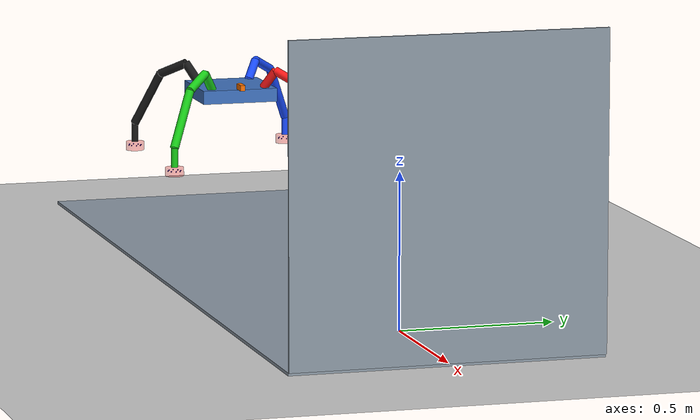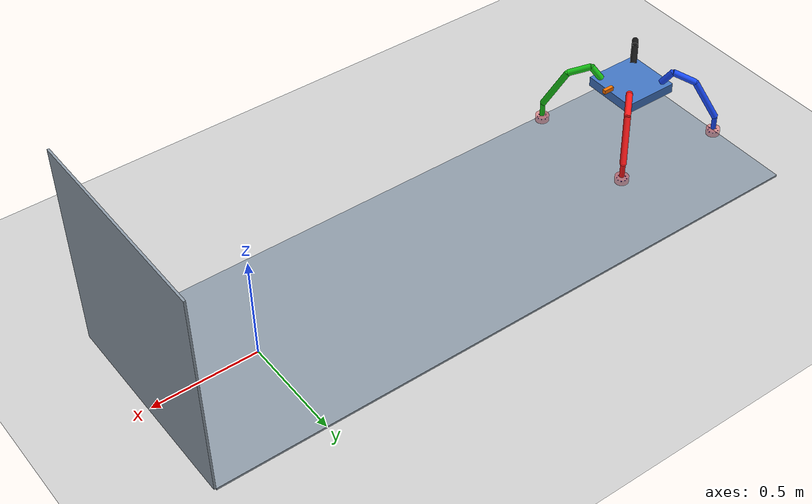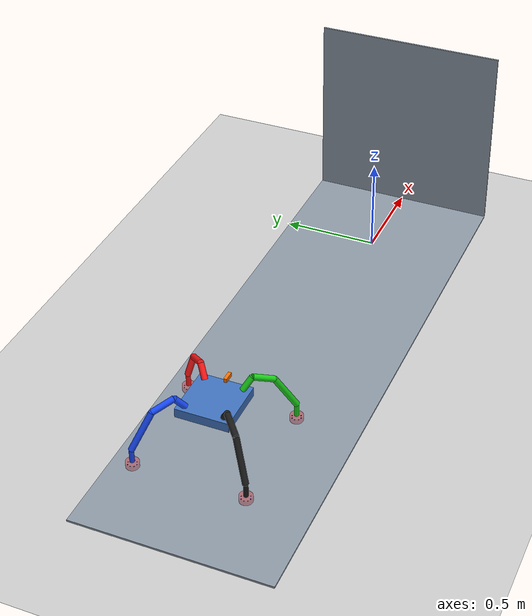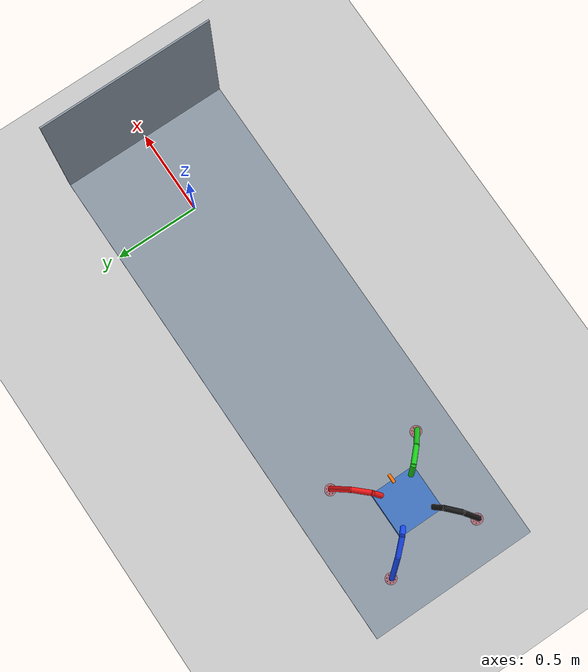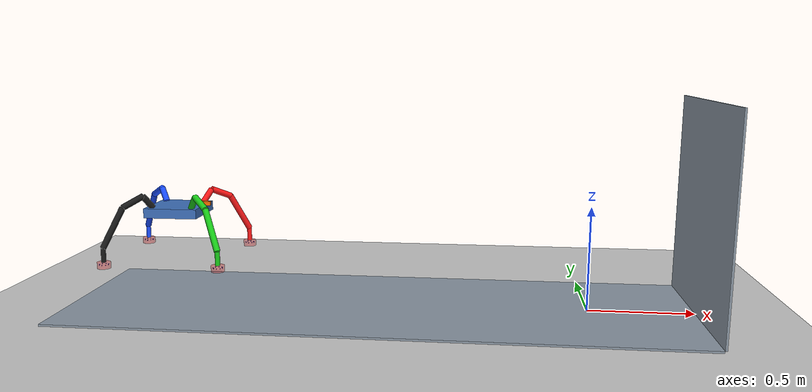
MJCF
<mujoco model="climbing_robot_scene">

  <compiler angle="degree" meshdir="assets" autolimits="true"/>

  <option timestep="0.002" integrator="implicitfast" gravity="0 0 -9.81"/>

  <visual>
    <headlight diffuse="0.8 0.8 0.8" ambient="0.4 0.4 0.4" specular="0.2 0.2 0.2"/>
    <map fogstart="1.5" fogend="4.0" znear="0.01" zfar="10.0"/>
    <rgba haze="0.75 0.85 1.0 1"/>
    <scale jointlength="1.5" jointwidth="0.01"/>
  </visual>

  <asset>
    <texture name="grid" type="2d" builtin="checker" width="512" height="512"
             rgb1="0.9 0.9 0.9" rgb2="0.7 0.7 0.7"/>
    <material name="grid" texture="grid" texrepeat="5 5" reflectance="0.2"/>
    <texture name="skybox" type="skybox" builtin="gradient"
             rgb1="0.6 0.8 1.0" rgb2="1.0 1.0 1.0" width="512" height="3072"/>
    <material name="steel" rgba="0.55 0.60 0.65 1" reflectance="0.4"/>
  </asset>

  <!-- Camera centred on midpoint of extended floor, looking toward wall corner -->
  <statistic center="-1.0 0 0.4" extent="2.5"/>

  <worldbody>
    <site name="world_origin" pos="0 0 0" size="0.05" rgba="1 1 1 0"/>

    <!-- Decorative background plane (no collision) — matches extended floor -->
    <geom name="floor_vis" type="plane" size="2.0 1.5 0.01" material="grid"
          pos="-1.0 0 -0.015" contype="0" conaffinity="0"/>

    <geom name="floor" type="box"
          pos="-1.0 0 -0.005" size="1.5 0.5 0.005"
          condim="6" friction="0.8 0.005 0.0001"
          contype="1" conaffinity="1"
          material="steel"/>

    <!-- Magnetic wall: 1000x1000x10 mm steel plate
         inner face at X=0.500, outer face at X=0.510
         axis-aligned — no euler needed for clean 90-deg floor-wall corner -->
    <geom name="wall" type="box"
          pos="0.505 0 0.5" size="0.005 0.5 0.5"
          condim="6" friction="0.8 0.005 0.0001"
          contype="1" conaffinity="1"
          material="steel"/>

  </worldbody>

  <include file="robot.xml"/>

</mujoco>

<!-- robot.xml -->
<!-- Robot fragment — included by scene.xml -->
<!-- All positions in metres (derived from mm specs); angles in degrees.      -->
<!-- CONNECTION METHOD: body-origin-at-joint + fromto geoms                  -->
<!--   Each body origin  = joint pivot point                                  -->
<!--   Cylinder fromto="0 0 0  dx dy dz" spans joint → next joint in body    -->
<!--   local frame.  Child body pos="dx dy dz" = that same endpoint.         -->
<!-- COORDINATE CONVENTION: +X = FRONT of robot (orange indicator on +X side -->
<!--   confirms front).  +Y = left.  Corner layout:                           -->
<!--     FL (+X, +Y)  |  FR (+X, -Y)                                         -->
<!--     BL (-X, +Y)  |  BR (-X, -Y)                                         -->
<!-- JOINT AXES:                                                               -->
<!--   hip_pitch (all legs): hinge about Z axis (0 0 1), range -90..+90 deg  -->
<!--     → yaw-like swing of leg in the horizontal plane                      -->
<!--   knee / wrist: hinge about leg-diagonal axis in XY plane                -->
<!--   ee: hinge about leg-diagonal axis in YZ plane                          -->
<!-- LEG COLORS (structural cylinder geoms):                                  -->
<!--   FL = RED   (1.0 0.1 0.1 1)                                             -->
<!--   FR = GREEN (0.1 0.8 0.1 1)                                             -->
<!--   BL = BLUE  (0.1 0.3 1.0 1)                                             -->
<!--   BR = BLACK (0.1 0.1 0.1 1)                                             -->
<mujoco>

  <!-- ─── Defaults ─────────────────────────────────────────────────────────── -->
  <default>
    <!-- CF links: carbon fibre density ~1500 kg/m^3 -->
    <default class="cf_link">
      <geom type="cylinder"
            condim="3" friction="1.0 0.005 0.0001"
            solimp="0.9 0.95 0.001" solref="0.02 1"
            contype="1" conaffinity="1"
            density="1500"
            rgba="0.12 0.12 0.14 1"/>
    </default>
    <default class="visual">
      <geom type="mesh" contype="0" conaffinity="0" group="2" rgba="0.2 0.4 0.9 0.4"/>
    </default>
    <default class="collision">
      <geom group="3" rgba="0 0 0 0" condim="6" contype="1" conaffinity="1"/>
    </default>
    <!-- damping 1 Nm.s/rad, armature 0.01 kg.m^2 -->
    <joint damping="1.0" armature="0.01"/>

  </default>

  <!-- ─── Assets ───────────────────────────────────────────────────────────── -->
  <asset>
    <mesh file="1103___pp___aws_pem_215lbs__eml63mm_24.stl"/>
  </asset>

  <!-- ─── Robot Body ───────────────────────────────────────────────────────── -->
  <worldbody>

    <body name="main_frame" pos="-2.0 0 0.45">
      <freejoint name="root"/>
      <geom name="frame_geom" type="box"
            size="0.130 0.130 0.023"
            density="7800"
            contype="0" conaffinity="0"
            rgba="0.25 0.45 0.75 1"/>
      <!-- Front indicator: small orange block on +X face (front), top surface -->
      <geom name="front_indicator" type="box"
            size="0.025 0.008 0.010"
            pos="0.138 0 0.033"
            contype="0" conaffinity="0"
            rgba="1.0 0.45 0.0 1"/>

      <!-- ════════════════════════ BACK-LEFT (BLUE) ══════════════════ -->
      <body name="hip_link_BL" pos="-0.0965 0.092 0.023">
        <joint name="hip_pitch_BL" type="hinge" axis="0 0 1" range="-45 45" />
        <geom name="hip_geom_BL" type="cylinder"
              fromto="0 0 0  -0.03350 0.03350 0.060"
              size="0.015" class="cf_link" rgba="0.1 0.3 1.0 1"/>

        <body name="knee_link_BL" pos="-0.03350 0.03350 0.060">
          <joint name="knee_BL" type="hinge" axis="0.7071068 0.7071068 0" range="-90 90" />
          <geom name="knee_geom_BL" type="cylinder"
                fromto="0 0 0  -0.07280 0.07280 -0.04432"
                size="0.015" class="cf_link" rgba="0.1 0.3 1.0 1"/>

          <body name="wrist_link_BL" pos="-0.07280 0.07280 -0.04432">
            <joint name="wrist_BL" type="hinge" axis="0.7071068 0.7071068 0" range="-90 90" />
            <geom name="wrist_geom_BL" type="cylinder"
                  fromto="0 0 0  -0.07425 0.07425 -0.18187"
                  size="0.015" class="cf_link" rgba="0.1 0.3 1.0 1"/>

            <body name="EE_BL" pos="-0.07425 0.07425 -0.18187" quat="0.7071 0 0.7071 0">
              <joint name="ee_BL" type="hinge" axis="0 0.7071068 0.7071068" range="-90 90" />
              <joint name="ee2_BL" type="hinge" axis="0 0.7071068 -0.7071068" range="-90 90"  stiffness="1.0" damping="0.3"/>
              <geom name="ee_link_geom_BL" type="cylinder"
                    fromto="0 0 0  0.066000 0.000000 0.000000"
                    size="0.0115" class="cf_link" rgba="0.1 0.3 1.0 1"/>
              <body name="electromagnet_BL" pos="0.066075 0.000000 0.000000" quat="-0.5 0.5 0.5 0.5">
                <joint name="em_z_BL" type="hinge" axis="0 -1 0" range="-180 180"  stiffness="0.0" damping="0.3"/>
                <geom type="mesh" class="visual"    mesh="1103___pp___aws_pem_215lbs__eml63mm_24" rgba="0.9 0.1 0.1 0.35"/>
                <geom type="mesh" class="collision" mesh="1103___pp___aws_pem_215lbs__eml63mm_24" mass="0.35"/>
                <geom type="sphere" size="0.002" pos="+0.022000 +0.012500 +0.000000" contype="0" conaffinity="0" mass="1e-6" rgba="0 0 1 1"/>
                <geom type="sphere" size="0.002" pos="+0.015556 +0.012500 +0.015556" contype="0" conaffinity="0" mass="1e-6" rgba="0 0 1 1"/>
                <geom type="sphere" size="0.002" pos="+0.000000 +0.012500 +0.022000" contype="0" conaffinity="0" mass="1e-6" rgba="0 0 1 1"/>
                <geom type="sphere" size="0.002" pos="-0.015556 +0.012500 +0.015556" contype="0" conaffinity="0" mass="1e-6" rgba="0 0 1 1"/>
                <geom type="sphere" size="0.002" pos="-0.022000 +0.012500 +0.000000" contype="0" conaffinity="0" mass="1e-6" rgba="0 0 1 1"/>
                <geom type="sphere" size="0.002" pos="-0.015556 +0.012500 -0.015556" contype="0" conaffinity="0" mass="1e-6" rgba="0 0 1 1"/>
                <geom type="sphere" size="0.002" pos="+0.000000 +0.012500 -0.022000" contype="0" conaffinity="0" mass="1e-6" rgba="0 0 1 1"/>
                <geom type="sphere" size="0.002" pos="+0.015556 +0.012500 -0.015556" contype="0" conaffinity="0" mass="1e-6" rgba="0 0 1 1"/>
              </body>
            </body><!-- EE_BL -->
          </body><!-- wrist_link_BL -->
        </body><!-- knee_link_BL -->
      </body><!-- hip_link_BL -->

      <!-- ════════════════════════ FRONT-LEFT (RED) ══════════════════ -->
      <body name="hip_link_FL" pos="0.0965 0.092 0.023">
        <joint name="hip_pitch_FL" type="hinge" axis="0 0 1" range="-45 45" />
        <geom name="hip_geom_FL" type="cylinder"
              fromto="0 0 0  0.03350 0.03350 0.060"
              size="0.015" class="cf_link" rgba="1.0 0.1 0.1 1"/>

        <body name="knee_link_FL" pos="0.03350 0.03350 0.060">
          <joint name="knee_FL" type="hinge" axis="0.7071068 -0.7071068 0" range="-90 90" />
          <geom name="knee_geom_FL" type="cylinder"
                fromto="0 0 0  0.07280 0.07280 -0.04432"
                size="0.015" class="cf_link" rgba="1.0 0.1 0.1 1"/>

          <body name="wrist_link_FL" pos="0.07280 0.07280 -0.04432">
            <joint name="wrist_FL" type="hinge" axis="0.7071068 -0.7071068 0" range="-90 90" />
            <geom name="wrist_geom_FL" type="cylinder"
                  fromto="0 0 0  0.07425 0.07425 -0.18187"
                  size="0.015" class="cf_link" rgba="1.0 0.1 0.1 1"/>

            <body name="EE_FL" pos="0.07425 0.07425 -0.18187" quat="0.7071 0 0.7071 0">
              <joint name="ee_FL" type="hinge" axis="0 -0.7071068 0.7071068" range="-90 90" />
              <joint name="ee2_FL" type="hinge" axis="0 0.7071068 0.7071068" range="-90 90"  stiffness="1.0" damping="0.3"/>
              <geom name="ee_link_geom_FL" type="cylinder"
                    fromto="0 0 0  0.066000 0.000000 0.000000"
                    size="0.0115" class="cf_link" rgba="1.0 0.1 0.1 1"/>
              <body name="electromagnet_FL" pos="0.066075 0.000000 0.000000" quat="0.5 0.5 0.5 -0.5">
                <joint name="em_z_FL" type="hinge" axis="0 -1 0" range="-180 180"  stiffness="0.0" damping="0.3"/>
                <geom type="mesh" class="visual"    mesh="1103___pp___aws_pem_215lbs__eml63mm_24" rgba="0.9 0.1 0.1 0.35"/>
                <geom type="mesh" class="collision" mesh="1103___pp___aws_pem_215lbs__eml63mm_24" mass="0.35"/>
                <geom type="sphere" size="0.002" pos="+0.022000 +0.012500 +0.000000" contype="0" conaffinity="0" mass="1e-6" rgba="0 0 1 1"/>
                <geom type="sphere" size="0.002" pos="+0.015556 +0.012500 +0.015556" contype="0" conaffinity="0" mass="1e-6" rgba="0 0 1 1"/>
                <geom type="sphere" size="0.002" pos="+0.000000 +0.012500 +0.022000" contype="0" conaffinity="0" mass="1e-6" rgba="0 0 1 1"/>
                <geom type="sphere" size="0.002" pos="-0.015556 +0.012500 +0.015556" contype="0" conaffinity="0" mass="1e-6" rgba="0 0 1 1"/>
                <geom type="sphere" size="0.002" pos="-0.022000 +0.012500 +0.000000" contype="0" conaffinity="0" mass="1e-6" rgba="0 0 1 1"/>
                <geom type="sphere" size="0.002" pos="-0.015556 +0.012500 -0.015556" contype="0" conaffinity="0" mass="1e-6" rgba="0 0 1 1"/>
                <geom type="sphere" size="0.002" pos="+0.000000 +0.012500 -0.022000" contype="0" conaffinity="0" mass="1e-6" rgba="0 0 1 1"/>
                <geom type="sphere" size="0.002" pos="+0.015556 +0.012500 -0.015556" contype="0" conaffinity="0" mass="1e-6" rgba="0 0 1 1"/>
              </body>
            </body><!-- EE_FL -->
          </body><!-- wrist_link_FL -->
        </body><!-- knee_link_FL -->
      </body><!-- hip_link_FL -->

      <!-- ════════════════════════ BACK-RIGHT (BLACK) ════════════════ -->
      <body name="hip_link_BR" pos="-0.0965 -0.092 0.023">
        <joint name="hip_pitch_BR" type="hinge" axis="0 0 1" range="-45 45" />
        <geom name="hip_geom_BR" type="cylinder"
              fromto="0 0 0  -0.03350 -0.03350 0.060"
              size="0.015" class="cf_link" rgba="0.1 0.1 0.1 1"/>

        <body name="knee_link_BR" pos="-0.03350 -0.03350 0.060">
          <joint name="knee_BR" type="hinge" axis="-0.7071068 0.7071068 0" range="-90 90" />
          <geom name="knee_geom_BR" type="cylinder"
                fromto="0 0 0  -0.07280 -0.07280 -0.04432"
                size="0.015" class="cf_link" rgba="0.1 0.1 0.1 1"/>

          <body name="wrist_link_BR" pos="-0.07280 -0.07280 -0.04432">
            <joint name="wrist_BR" type="hinge" axis="-0.7071068 0.7071068 0" range="-90 90" />
            <geom name="wrist_geom_BR" type="cylinder"
                  fromto="0 0 0  -0.07425 -0.07425 -0.18187"
                  size="0.015" class="cf_link" rgba="0.1 0.1 0.1 1"/>

            <body name="EE_BR" pos="-0.07425 -0.07425 -0.18187" quat="0.7071 0 0.7071 0">
              <joint name="ee_BR" type="hinge" axis="0 0.7071068 -0.7071068" range="-90 90" />
              <joint name="ee2_BR" type="hinge" axis="0 0.7071068 0.7071068" range="-90 90"  stiffness="1.0" damping="0.3"/>
              <geom name="ee_link_geom_BR" type="cylinder"
                    fromto="0 0 0  0.066000 0.000000 0.000000"
                    size="0.0115" class="cf_link" rgba="0.1 0.1 0.1 1"/>
              <body name="electromagnet_BR" pos="0.066075 0.000000 0.000000" quat="0.5 0.5 0.5 -0.5">
                <joint name="em_z_BR" type="hinge" axis="0 -1 0" range="-180 180"  stiffness="0.0" damping="0.3"/>
                <geom type="mesh" class="visual"    mesh="1103___pp___aws_pem_215lbs__eml63mm_24" rgba="0.9 0.1 0.1 0.35"/>
                <geom type="mesh" class="collision" mesh="1103___pp___aws_pem_215lbs__eml63mm_24" mass="0.35"/>
                <geom type="sphere" size="0.002" pos="+0.022000 +0.012500 +0.000000" contype="0" conaffinity="0" mass="1e-6" rgba="0 0 1 1"/>
                <geom type="sphere" size="0.002" pos="+0.015556 +0.012500 +0.015556" contype="0" conaffinity="0" mass="1e-6" rgba="0 0 1 1"/>
                <geom type="sphere" size="0.002" pos="+0.000000 +0.012500 +0.022000" contype="0" conaffinity="0" mass="1e-6" rgba="0 0 1 1"/>
                <geom type="sphere" size="0.002" pos="-0.015556 +0.012500 +0.015556" contype="0" conaffinity="0" mass="1e-6" rgba="0 0 1 1"/>
                <geom type="sphere" size="0.002" pos="-0.022000 +0.012500 +0.000000" contype="0" conaffinity="0" mass="1e-6" rgba="0 0 1 1"/>
                <geom type="sphere" size="0.002" pos="-0.015556 +0.012500 -0.015556" contype="0" conaffinity="0" mass="1e-6" rgba="0 0 1 1"/>
                <geom type="sphere" size="0.002" pos="+0.000000 +0.012500 -0.022000" contype="0" conaffinity="0" mass="1e-6" rgba="0 0 1 1"/>
                <geom type="sphere" size="0.002" pos="+0.015556 +0.012500 -0.015556" contype="0" conaffinity="0" mass="1e-6" rgba="0 0 1 1"/>
              </body>
            </body><!-- EE_BR -->
          </body><!-- wrist_link_BR -->
        </body><!-- knee_link_BR -->
      </body><!-- hip_link_BR -->

      <!-- ════════════════════════ FRONT-RIGHT (GREEN) ═══════════════ -->
      <body name="hip_link_FR" pos="0.0965 -0.092 0.023">
        <joint name="hip_pitch_FR" type="hinge" axis="0 0 1" range="-45 45" />
        <geom name="hip_geom_FR" type="cylinder"
              fromto="0 0 0  0.03350 -0.03350 0.060"
              size="0.015" class="cf_link" rgba="0.1 0.8 0.1 1"/>

        <body name="knee_link_FR" pos="0.03350 -0.03350 0.060">
          <joint name="knee_FR" type="hinge" axis="-0.7071068 -0.7071068 0" range="-90 90" />
          <geom name="knee_geom_FR" type="cylinder"
                fromto="0 0 0  0.07280 -0.07280 -0.04432"
                size="0.015" class="cf_link" rgba="0.1 0.8 0.1 1"/>

          <body name="wrist_link_FR" pos="0.07280 -0.07280 -0.04432">
            <joint name="wrist_FR" type="hinge" axis="-0.7071068 -0.7071068 0" range="-90 90" />
            <geom name="wrist_geom_FR" type="cylinder"
                  fromto="0 0 0  0.07425 -0.07425 -0.18187"
                  size="0.015" class="cf_link" rgba="0.1 0.8 0.1 1"/>

            <body name="EE_FR" pos="0.07425 -0.07425 -0.18187" quat="0.7071 0 0.7071 0">
              <joint name="ee_FR" type="hinge" axis="0 -0.7071068 -0.7071068" range="-90 90" />
              <joint name="ee2_FR" type="hinge" axis="0 0.7071068 -0.7071068" range="-90 90"  stiffness="1.0" damping="0.3"/>
              <geom name="ee_link_geom_FR" type="cylinder"
                    fromto="0 0 0  0.066000 0.000000 0.000000"
                    size="0.0115" class="cf_link" rgba="0.1 0.8 0.1 1"/>
              <body name="electromagnet_FR" pos="0.066075 0.000000 0.000000" quat="-0.5 0.5 0.5 0.5">
                <joint name="em_z_FR" type="hinge" axis="0 -1 0" range="-180 180"  stiffness="0.0" damping="0.3"/>
                <geom type="mesh" class="visual"    mesh="1103___pp___aws_pem_215lbs__eml63mm_24" rgba="0.9 0.1 0.1 0.35"/>
                <geom type="mesh" class="collision" mesh="1103___pp___aws_pem_215lbs__eml63mm_24" mass="0.35"/>
                <geom type="sphere" size="0.002" pos="+0.022000 +0.012500 +0.000000" contype="0" conaffinity="0" mass="1e-6" rgba="0 0 1 1"/>
                <geom type="sphere" size="0.002" pos="+0.015556 +0.012500 +0.015556" contype="0" conaffinity="0" mass="1e-6" rgba="0 0 1 1"/>
                <geom type="sphere" size="0.002" pos="+0.000000 +0.012500 +0.022000" contype="0" conaffinity="0" mass="1e-6" rgba="0 0 1 1"/>
                <geom type="sphere" size="0.002" pos="-0.015556 +0.012500 +0.015556" contype="0" conaffinity="0" mass="1e-6" rgba="0 0 1 1"/>
                <geom type="sphere" size="0.002" pos="-0.022000 +0.012500 +0.000000" contype="0" conaffinity="0" mass="1e-6" rgba="0 0 1 1"/>
                <geom type="sphere" size="0.002" pos="-0.015556 +0.012500 -0.015556" contype="0" conaffinity="0" mass="1e-6" rgba="0 0 1 1"/>
                <geom type="sphere" size="0.002" pos="+0.000000 +0.012500 -0.022000" contype="0" conaffinity="0" mass="1e-6" rgba="0 0 1 1"/>
                <geom type="sphere" size="0.002" pos="+0.015556 +0.012500 -0.015556" contype="0" conaffinity="0" mass="1e-6" rgba="0 0 1 1"/>
              </body>
            </body><!-- EE_FR -->
          </body><!-- wrist_link_FR -->
        </body><!-- knee_link_FR -->
      </body><!-- hip_link_FR -->

    </body><!-- main_frame -->
  </worldbody>

  <!-- ─── Actuators (torque-controlled motors) ──────────────────────────────── -->
  <actuator>
    <!-- Back-Left -->
    <motor name="hip_pitch_act_BL" joint="hip_pitch_BL"  ctrlrange="-100 100"/>
    <motor name="knee_act_BL"      joint="knee_BL"       ctrlrange="-100 100"/>
    <motor name="wrist_act_BL"     joint="wrist_BL"      ctrlrange="-100 100"/>
    <!-- Front-Left -->
    <motor name="hip_pitch_act_FL" joint="hip_pitch_FL"  ctrlrange="-100 100"/>
    <motor name="knee_act_FL"      joint="knee_FL"       ctrlrange="-100 100"/>
    <motor name="wrist_act_FL"     joint="wrist_FL"      ctrlrange="-100 100"/>
    <!-- Back-Right -->
    <motor name="hip_pitch_act_BR" joint="hip_pitch_BR"  ctrlrange="-100 100"/>
    <motor name="knee_act_BR"      joint="knee_BR"       ctrlrange="-100 100"/>
    <motor name="wrist_act_BR"     joint="wrist_BR"      ctrlrange="-100 100"/>
    <!-- Front-Right -->
    <motor name="hip_pitch_act_FR" joint="hip_pitch_FR"  ctrlrange="-100 100"/>
    <motor name="knee_act_FR"      joint="knee_FR"       ctrlrange="-100 100"/>
    <motor name="wrist_act_FR"     joint="wrist_FR"      ctrlrange="-100 100"/>
    <!-- EE joints -->
    <motor name="ee_act_BL"        joint="ee_BL"         ctrlrange="-100 100"/>
    <motor name="ee_act_FL"        joint="ee_FL"         ctrlrange="-100 100"/>
    <motor name="ee_act_BR"        joint="ee_BR"         ctrlrange="-100 100"/>
    <motor name="ee_act_FR"        joint="ee_FR"         ctrlrange="-100 100"/>
  </actuator>

</mujoco>
